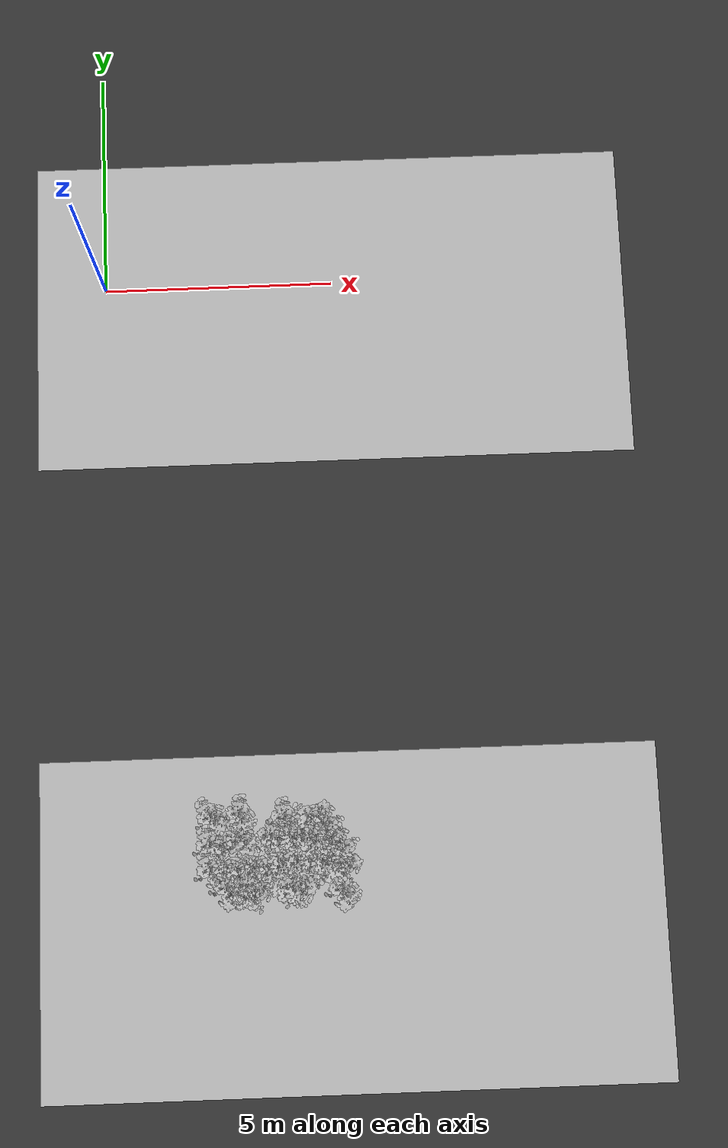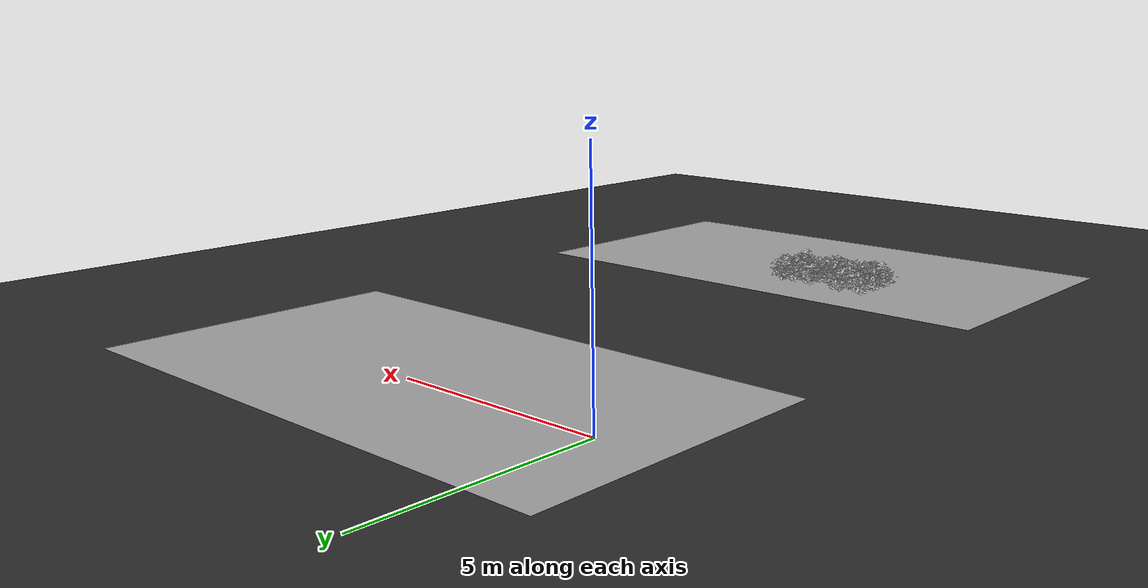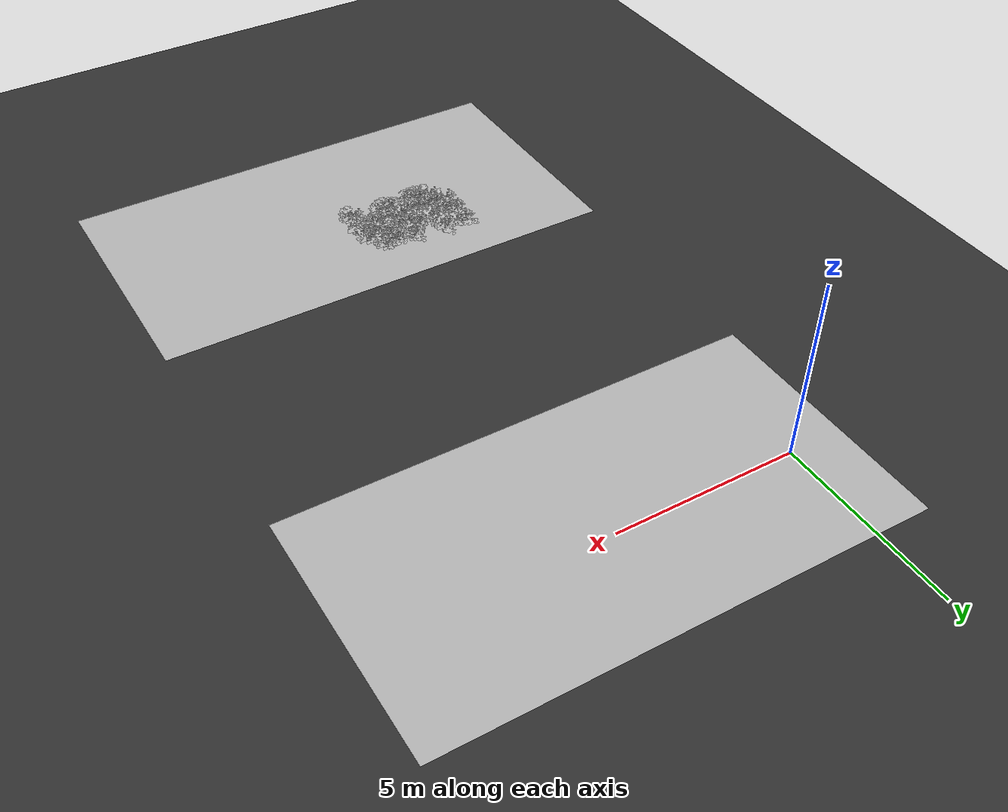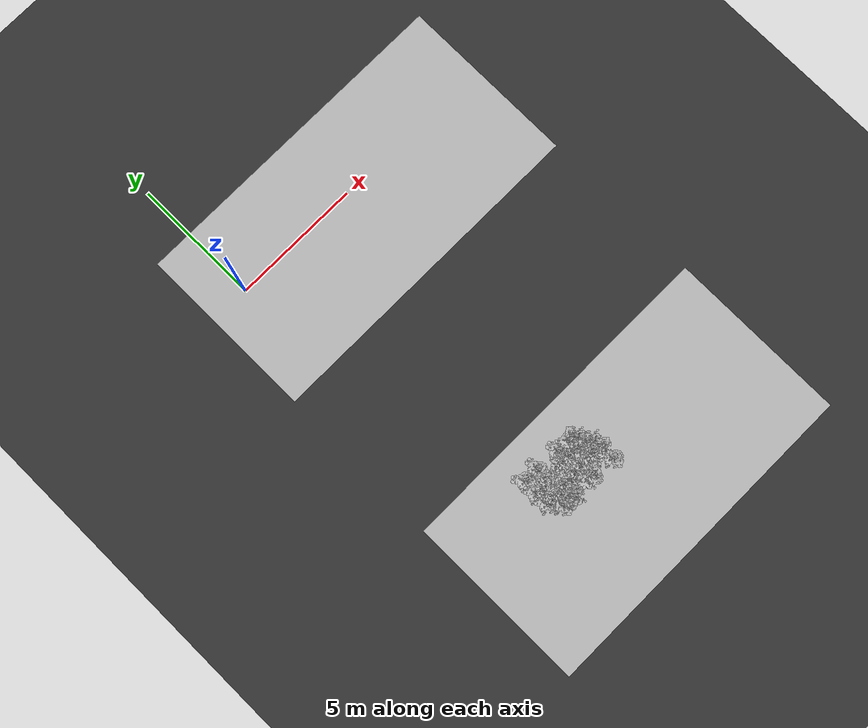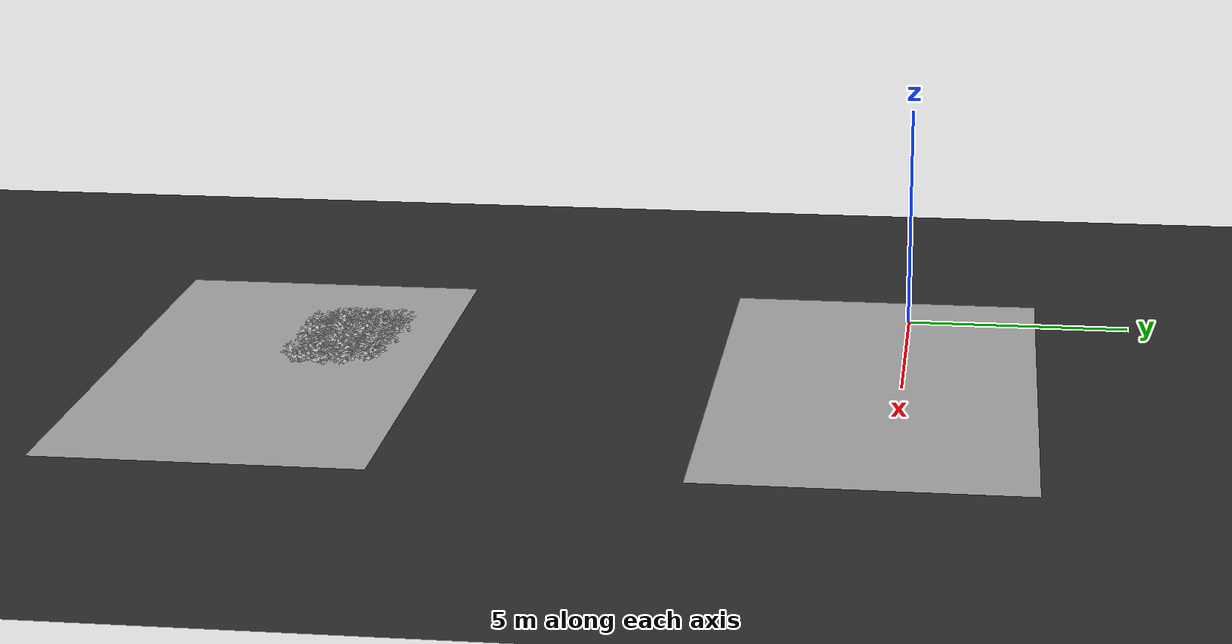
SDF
<sdf version="1.7">
 <world name="default">
  <model name="ground_plane">
   <static>1</static>
   <link name="link">
    <collision name="collision">
     <geometry><plane><normal>0 0 1</normal><size>100 100</size></plane></geometry>
     <surface>
      <contact><collide_bitmask>65535</collide_bitmask></contact>
      <friction><ode><mu>100</mu><mu2>50</mu2></ode></friction>
     </surface>
    </collision>
    <visual name="visual">
     <cast_shadows>0</cast_shadows>
     <geometry><plane><normal>0 0 1</normal><size>100 100</size></plane></geometry>
     <material>
      <ambient>0.2 0.2 0.2 1.0</ambient>
      <diffuse>0.2 0.2 0.2 1.0</diffuse>
      <specular>0.2 0.2 0.2 1.0</specular>
      <emissive>0.2 0.2 0.2 1.0</emissive>
     </material>
    </visual>
   </link>
  </model>
  <model name="ground">
   <pose>5 -0.5 0.01  3.141592654 0 0</pose>
   <static>true</static>
   <link name="body">
    <visual name="visual">
     <cast_shadows>0</cast_shadows>
     <geometry>
      <mesh><uri>file:///home/ifcosta/final_ws/src/cnn_line/worlds/models/ground.obj</uri></mesh>
     </geometry>
    </visual>
   </link>
  </model>
  <model name="ground_2">
   <pose>5 -13.8 0.01  3.141592654 0 0</pose>
   <static>true</static>
   <link name="body">
    <visual name="visual">
     <cast_shadows>0</cast_shadows>
     <geometry>
      <mesh><uri>file:///home/ifcosta/final_ws/src/cnn_line/worlds/models/ground.obj</uri></mesh>
     </geometry>
    </visual>
   </link>
  </model>
  <model name="plt_40008">
   <pose>2.4 -13.2 0.0127 0.0 0.0 -0.64506</pose>
   <static>true</static>
   <link name="body">
    <visual name="visual">
     <geometry>
      <mesh><uri>file:///home/ifcosta/final_ws/src/cnn_line/worlds/models/plant37.obj</uri></mesh>
     </geometry>
    </visual>
   </link>
  </model>
  <model name="plt_40009">
   <pose>2.73 -13.2 0.0151 0.0 0.0 -1.2915</pose>
   <static>true</static>
   <link name="body">
    <visual name="visual">
     <geometry>
      <mesh><uri>file:///home/ifcosta/final_ws/src/cnn_line/worlds/models/plant37.obj</uri></mesh>
     </geometry>
    </visual>
   </link>
  </model>
  <model name="plt_40010">
   <pose>2.98 -13.3 0.0139 0.0 0.0 1.1998</pose>
   <static>true</static>
   <link name="body">
    <visual name="visual">
     <geometry>
      <mesh><uri>file:///home/ifcosta/final_ws/src/cnn_line/worlds/models/plant37.obj</uri></mesh>
     </geometry>
    </visual>
   </link>
  </model>
  <model name="plt_40012">
   <pose>3.68 -13.2 0.0168 0.0 0.0 0.77402</pose>
   <static>true</static>
   <link name="body">
    <visual name="visual">
     <geometry>
      <mesh><uri>file:///home/ifcosta/final_ws/src/cnn_line/worlds/models/plant37.obj</uri></mesh>
     </geometry>
    </visual>
   </link>
  </model>
  <model name="plt_40013">
   <pose>3.91 -13.2 0.0149 0.0 0.0 -1.9044</pose>
   <static>true</static>
   <link name="body">
    <visual name="visual">
     <geometry>
      <mesh><uri>file:///home/ifcosta/final_ws/src/cnn_line/worlds/models/plant37.obj</uri></mesh>
     </geometry>
    </visual>
   </link>
  </model>
  <model name="plt_40016">
   <pose>4.79 -13.3 0.0151 0.0 0.0 -0.58913</pose>
   <static>true</static>
   <link name="body">
    <visual name="visual">
     <geometry>
      <mesh><uri>file:///home/ifcosta/final_ws/src/cnn_line/worlds/models/plant37.obj</uri></mesh>
     </geometry>
    </visual>
   </link>
  </model>
  <model name="plt_40041">
   <pose>2.08 -12.8 0.0162 0.0 0.0 -0.30769</pose>
   <static>true</static>
   <link name="body">
    <visual name="visual">
     <geometry>
      <mesh><uri>file:///home/ifcosta/final_ws/src/cnn_line/worlds/models/plant37.obj</uri></mesh>
     </geometry>
    </visual>
   </link>
  </model>
  <model name="plt_40042">
   <pose>2.45 -12.8 0.0149 0.0 0.0 0.00055246</pose>
   <static>true</static>
   <link name="body">
    <visual name="visual">
     <geometry>
      <mesh><uri>file:///home/ifcosta/final_ws/src/cnn_line/worlds/models/plant37.obj</uri></mesh>
     </geometry>
    </visual>
   </link>
  </model>
  <model name="plt_40043">
   <pose>2.74 -12.8 0.0141 0.0 0.0 0.71517</pose>
   <static>true</static>
   <link name="body">
    <visual name="visual">
     <geometry>
      <mesh><uri>file:///home/ifcosta/final_ws/src/cnn_line/worlds/models/plant37.obj</uri></mesh>
     </geometry>
    </visual>
   </link>
  </model>
  <model name="plt_40044">
   <pose>3.0 -12.8 0.0157 0.0 0.0 0.098631</pose>
   <static>true</static>
   <link name="body">
    <visual name="visual">
     <geometry>
      <mesh><uri>file:///home/ifcosta/final_ws/src/cnn_line/worlds/models/plant37.obj</uri></mesh>
     </geometry>
    </visual>
   </link>
  </model>
  <model name="plt_40045">
   <pose>3.32 -12.8 0.0137 0.0 0.0 0.43885</pose>
   <static>true</static>
   <link name="body">
    <visual name="visual">
     <geometry>
      <mesh><uri>file:///home/ifcosta/final_ws/src/cnn_line/worlds/models/plant37.obj</uri></mesh>
     </geometry>
    </visual>
   </link>
  </model>
  <model name="plt_40046">
   <pose>3.6 -12.7 0.0158 0.0 0.0 0.20573</pose>
   <static>true</static>
   <link name="body">
    <visual name="visual">
     <geometry>
      <mesh><uri>file:///home/ifcosta/final_ws/src/cnn_line/worlds/models/plant37.obj</uri></mesh>
     </geometry>
    </visual>
   </link>
  </model>
  <model name="plt_40047">
   <pose>3.9 -12.7 0.0159 0.0 0.0 -0.13756</pose>
   <static>true</static>
   <link name="body">
    <visual name="visual">
     <geometry>
      <mesh><uri>file:///home/ifcosta/final_ws/src/cnn_line/worlds/models/plant37.obj</uri></mesh>
     </geometry>
    </visual>
   </link>
  </model>
  <model name="plt_40048">
   <pose>4.25 -12.7 0.0164 0.0 0.0 0.38282</pose>
   <static>true</static>
   <link name="body">
    <visual name="visual">
     <geometry>
      <mesh><uri>file:///home/ifcosta/final_ws/src/cnn_line/worlds/models/plant37.obj</uri></mesh>
     </geometry>
    </visual>
   </link>
  </model>
  <model name="plt_40049">
   <pose>4.5 -12.7 0.014 0.0 0.0 0.47879</pose>
   <static>true</static>
   <link name="body">
    <visual name="visual">
     <geometry>
      <mesh><uri>file:///home/ifcosta/final_ws/src/cnn_line/worlds/models/plant37.obj</uri></mesh>
     </geometry>
    </visual>
   </link>
  </model>
  <model name="plt_40050">
   <pose>4.84 -12.8 0.0147 0.0 0.0 1.2365</pose>
   <static>true</static>
   <link name="body">
    <visual name="visual">
     <geometry>
      <mesh><uri>file:///home/ifcosta/final_ws/src/cnn_line/worlds/models/plant37.obj</uri></mesh>
     </geometry>
    </visual>
   </link>
  </model>
  <model name="plt_40075">
   <pose>2.07 -12.3 0.0153 0.0 0.0 -0.36767</pose>
   <static>true</static>
   <link name="body">
    <visual name="visual">
     <geometry>
      <mesh><uri>file:///home/ifcosta/final_ws/src/cnn_line/worlds/models/plant37.obj</uri></mesh>
     </geometry>
    </visual>
   </link>
  </model>
  <model name="plt_40076">
   <pose>2.4 -12.3 0.0146 0.0 0.0 0.89183</pose>
   <static>true</static>
   <link name="body">
    <visual name="visual">
     <geometry>
      <mesh><uri>file:///home/ifcosta/final_ws/src/cnn_line/worlds/models/plant37.obj</uri></mesh>
     </geometry>
    </visual>
   </link>
  </model>
  <model name="plt_40077">
   <pose>2.7 -12.2 0.0145 0.0 0.0 -0.24792</pose>
   <static>true</static>
   <link name="body">
    <visual name="visual">
     <geometry>
      <mesh><uri>file:///home/ifcosta/final_ws/src/cnn_line/worlds/models/plant37.obj</uri></mesh>
     </geometry>
    </visual>
   </link>
  </model>
  <model name="plt_40079">
   <pose>3.28 -12.2 0.0128 0.0 0.0 -1.0591</pose>
   <static>true</static>
   <link name="body">
    <visual name="visual">
     <geometry>
      <mesh><uri>file:///home/ifcosta/final_ws/src/cnn_line/worlds/models/plant37.obj</uri></mesh>
     </geometry>
    </visual>
   </link>
  </model>
  <model name="plt_40080">
   <pose>3.59 -12.2 0.0123 0.0 0.0 0.62255</pose>
   <static>true</static>
   <link name="body">
    <visual name="visual">
     <geometry>
      <mesh><uri>file:///home/ifcosta/final_ws/src/cnn_line/worlds/models/plant37.obj</uri></mesh>
     </geometry>
    </visual>
   </link>
  </model>
  <model name="plt_40081">
   <pose>3.89 -12.2 0.0166 0.0 0.0 0.5924</pose>
   <static>true</static>
   <link name="body">
    <visual name="visual">
     <geometry>
      <mesh><uri>file:///home/ifcosta/final_ws/src/cnn_line/worlds/models/plant37.obj</uri></mesh>
     </geometry>
    </visual>
   </link>
  </model>
  <model name="plt_40082">
   <pose>4.17 -12.2 0.0134 0.0 0.0 -1.5226</pose>
   <static>true</static>
   <link name="body">
    <visual name="visual">
     <geometry>
      <mesh><uri>file:///home/ifcosta/final_ws/src/cnn_line/worlds/models/plant37.obj</uri></mesh>
     </geometry>
    </visual>
   </link>
  </model>
  <model name="plt_40083">
   <pose>4.52 -12.3 0.014 0.0 0.0 -1.128</pose>
   <static>true</static>
   <link name="body">
    <visual name="visual">
     <geometry>
      <mesh><uri>file:///home/ifcosta/final_ws/src/cnn_line/worlds/models/plant37.obj</uri></mesh>
     </geometry>
    </visual>
   </link>
  </model>
  <model name="plt_40084">
   <pose>4.79 -12.3 0.0162 0.0 0.0 2.6591</pose>
   <static>true</static>
   <link name="body">
    <visual name="visual">
     <geometry>
      <mesh><uri>file:///home/ifcosta/final_ws/src/cnn_line/worlds/models/plant37.obj</uri></mesh>
     </geometry>
    </visual>
   </link>
  </model>
  <model name="plt_40109">
   <pose>2.11 -11.7 0.0164 0.0 0.0 -0.14721</pose>
   <static>true</static>
   <link name="body">
    <visual name="visual">
     <geometry>
      <mesh><uri>file:///home/ifcosta/final_ws/src/cnn_line/worlds/models/plant37.obj</uri></mesh>
     </geometry>
    </visual>
   </link>
  </model>
  <model name="plt_40111">
   <pose>2.67 -11.7 0.014 0.0 0.0 -0.80367</pose>
   <static>true</static>
   <link name="body">
    <visual name="visual">
     <geometry>
      <mesh><uri>file:///home/ifcosta/final_ws/src/cnn_line/worlds/models/plant37.obj</uri></mesh>
     </geometry>
    </visual>
   </link>
  </model>
  <model name="plt_40114">
   <pose>3.62 -11.8 0.0179 0.0 0.0 -0.65276</pose>
   <static>true</static>
   <link name="body">
    <visual name="visual">
     <geometry>
      <mesh><uri>file:///home/ifcosta/final_ws/src/cnn_line/worlds/models/plant37.obj</uri></mesh>
     </geometry>
    </visual>
   </link>
  </model>
  <model name="plt_40116">
   <pose>4.19 -11.8 0.0137 0.0 0.0 0.21241</pose>
   <static>true</static>
   <link name="body">
    <visual name="visual">
     <geometry>
      <mesh><uri>file:///home/ifcosta/final_ws/src/cnn_line/worlds/models/plant37.obj</uri></mesh>
     </geometry>
    </visual>
   </link>
  </model>
  <model name="plt_40117">
   <pose>4.48 -11.8 0.0169 0.0 0.0 2.4973</pose>
   <static>true</static>
   <link name="body">
    <visual name="visual">
     <geometry>
      <mesh><uri>file:///home/ifcosta/final_ws/src/cnn_line/worlds/models/plant37.obj</uri></mesh>
     </geometry>
    </visual>
   </link>
  </model>
 </world>
</sdf>
